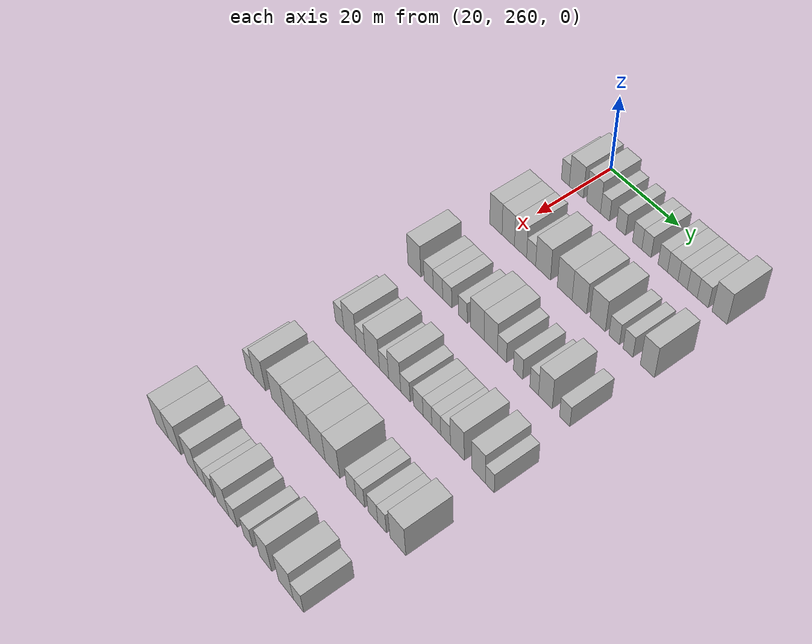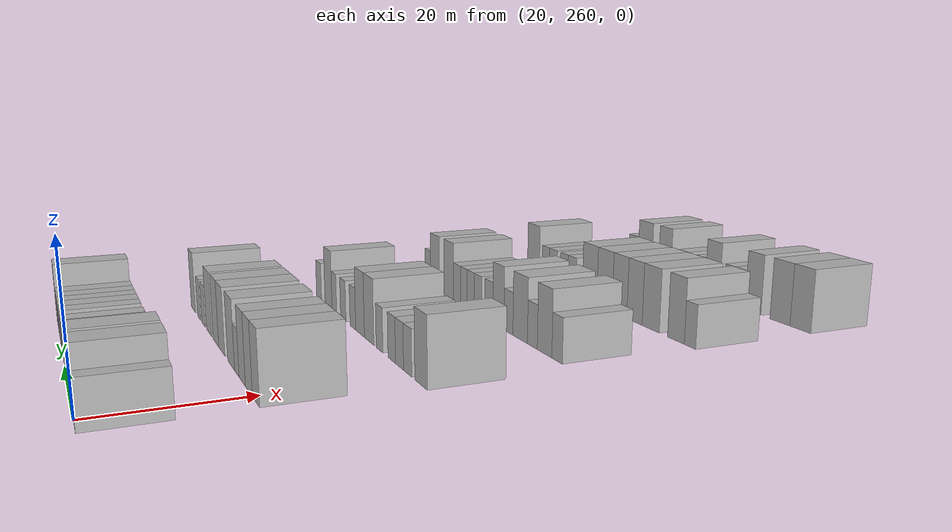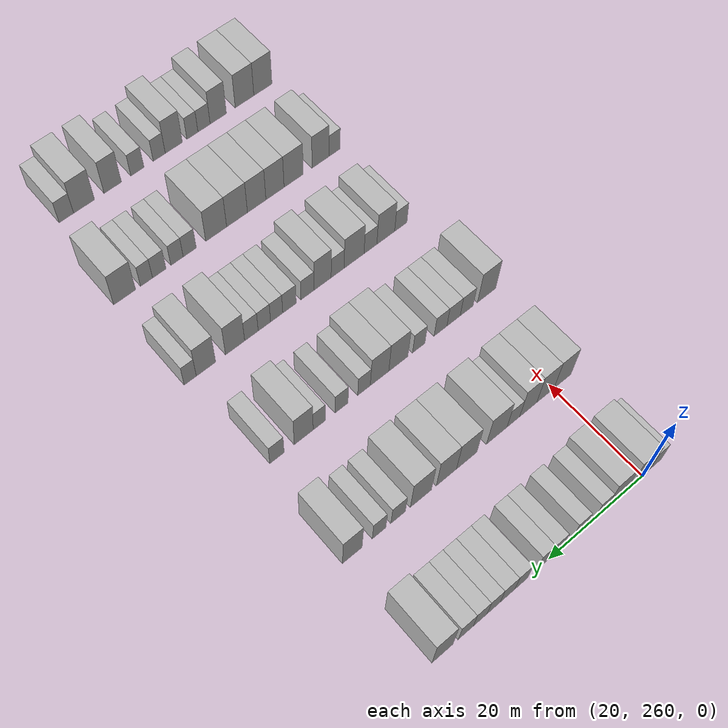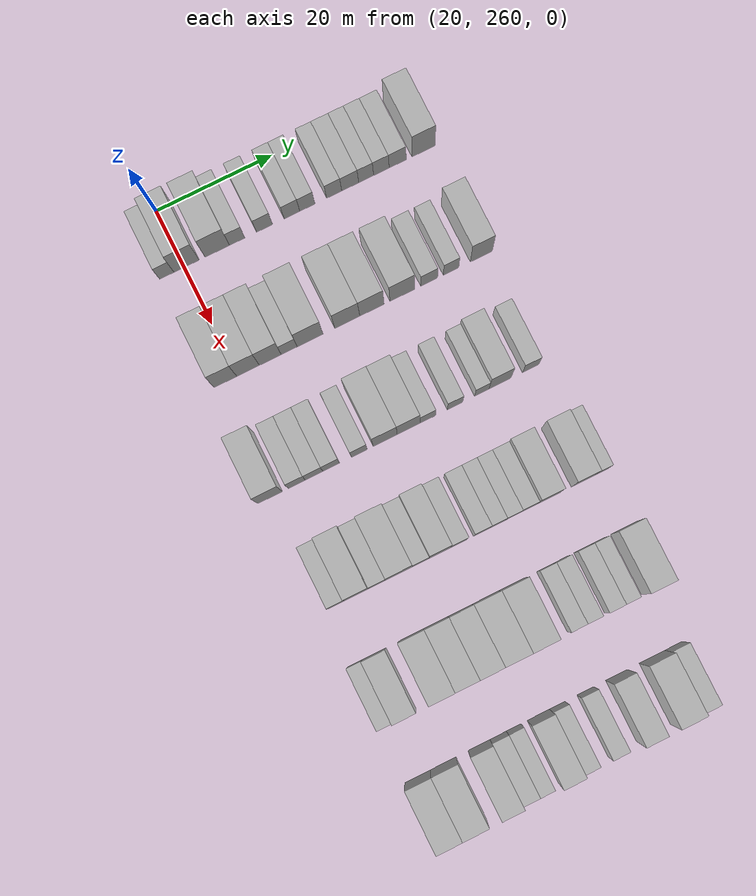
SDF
<sdf version="1.6">
 <world name="default">
  <model name="building_163">
   <static>1</static>
   <pose>25.0000 257.0607 0 0.000000 0.000000 0.000000</pose>
   <link name="link">
    <pose>0 0 3.00 0 0 0</pose>
    <collision name="collision"><geometry><box><size>10.0000 2.4464 6.0000</size></box></geometry></collision>
    <visual name="visual">
     <cast_shadows>0</cast_shadows>
     <geometry><box><size>10.0000 2.4464 6.0000</size></box></geometry>
     <material>
      <script>
       <uri>model://HANNAS_wall/materials/scripts</uri>
       <uri>model://HANNAS_wall/materials/textures</uri>
       <name>vrc/HANNAS_wall</name>
      </script>
     </material>
    </visual>
   </link>
  </model>
  <model name="building_164">
   <static>1</static>
   <pose>25.0000 260.4388 0 0.000000 0.000000 0.000000</pose>
   <link name="link">
    <pose>0 0 4.50 0 0 0</pose>
    <collision name="collision"><geometry><box><size>10.0000 4.3098 9.0000</size></box></geometry></collision>
    <visual name="visual">
     <cast_shadows>0</cast_shadows>
     <geometry><box><size>10.0000 4.3098 9.0000</size></box></geometry>
     <material>
      <script>
       <uri>model://HANNAS_wall/materials/scripts</uri>
       <uri>model://HANNAS_wall/materials/textures</uri>
       <name>vrc/HANNAS_wall</name>
      </script>
     </material>
    </visual>
   </link>
  </model>
  <model name="building_165">
   <static>1</static>
   <pose>25.0000 265.6917 0 0.000000 0.000000 0.000000</pose>
   <link name="link">
    <pose>0 0 4.50 0 0 0</pose>
    <collision name="collision"><geometry><box><size>10.0000 4.1960 9.0000</size></box></geometry></collision>
    <visual name="visual">
     <cast_shadows>0</cast_shadows>
     <geometry><box><size>10.0000 4.1960 9.0000</size></box></geometry>
     <material>
      <script>
       <uri>model://HANNAS_wall/materials/scripts</uri>
       <uri>model://HANNAS_wall/materials/textures</uri>
       <name>vrc/HANNAS_wall</name>
      </script>
     </material>
    </visual>
   </link>
  </model>
  <model name="building_166">
   <static>1</static>
   <pose>25.0000 269.1100 0 0.000000 0.000000 0.000000</pose>
   <link name="link">
    <pose>0 0 3.00 0 0 0</pose>
    <collision name="collision"><geometry><box><size>10.0000 2.6405 6.0000</size></box></geometry></collision>
    <visual name="visual">
     <cast_shadows>0</cast_shadows>
     <geometry><box><size>10.0000 2.6405 6.0000</size></box></geometry>
     <material>
      <script>
       <uri>model://HANNAS_wall/materials/scripts</uri>
       <uri>model://HANNAS_wall/materials/textures</uri>
       <name>vrc/HANNAS_wall</name>
      </script>
     </material>
    </visual>
   </link>
  </model>
  <model name="building_167">
   <static>1</static>
   <pose>25.0000 273.8088 0 0.000000 0.000000 0.000000</pose>
   <link name="link">
    <pose>0 0 3.00 0 0 0</pose>
    <collision name="collision"><geometry><box><size>10.0000 2.7572 6.0000</size></box></geometry></collision>
    <visual name="visual">
     <cast_shadows>0</cast_shadows>
     <geometry><box><size>10.0000 2.7572 6.0000</size></box></geometry>
     <material>
      <script>
       <uri>model://HANNAS_wall/materials/scripts</uri>
       <uri>model://HANNAS_wall/materials/textures</uri>
       <name>vrc/HANNAS_wall</name>
      </script>
     </material>
    </visual>
   </link>
  </model>
  <model name="building_168">
   <static>1</static>
   <pose>25.0000 278.5314 0 0.000000 0.000000 0.000000</pose>
   <link name="link">
    <pose>0 0 3.00 0 0 0</pose>
    <collision name="collision"><geometry><box><size>10.0000 2.6878 6.0000</size></box></geometry></collision>
    <visual name="visual">
     <cast_shadows>0</cast_shadows>
     <geometry><box><size>10.0000 2.6878 6.0000</size></box></geometry>
     <material>
      <script>
       <uri>model://HANNAS_wall/materials/scripts</uri>
       <uri>model://HANNAS_wall/materials/textures</uri>
       <name>vrc/HANNAS_wall</name>
      </script>
     </material>
    </visual>
   </link>
  </model>
  <model name="building_169">
   <static>1</static>
   <pose>25.0000 281.1894 0 0.000000 0.000000 0.000000</pose>
   <link name="link">
    <pose>0 0 3.00 0 0 0</pose>
    <collision name="collision"><geometry><box><size>10.0000 2.6283 6.0000</size></box></geometry></collision>
    <visual name="visual">
     <cast_shadows>0</cast_shadows>
     <geometry><box><size>10.0000 2.6283 6.0000</size></box></geometry>
     <material>
      <script>
       <uri>model://HANNAS_wall/materials/scripts</uri>
       <uri>model://HANNAS_wall/materials/textures</uri>
       <name>vrc/HANNAS_wall</name>
      </script>
     </material>
    </visual>
   </link>
  </model>
  <model name="building_170">
   <static>1</static>
   <pose>25.0000 285.8155 0 0.000000 0.000000 0.000000</pose>
   <link name="link">
    <pose>0 0 3.00 0 0 0</pose>
    <collision name="collision"><geometry><box><size>10.0000 2.6239 6.0000</size></box></geometry></collision>
    <visual name="visual">
     <cast_shadows>0</cast_shadows>
     <geometry><box><size>10.0000 2.6239 6.0000</size></box></geometry>
     <material>
      <script>
       <uri>model://HANNAS_wall/materials/scripts</uri>
       <uri>model://HANNAS_wall/materials/textures</uri>
       <name>vrc/HANNAS_wall</name>
      </script>
     </material>
    </visual>
   </link>
  </model>
  <model name="building_171">
   <static>1</static>
   <pose>25.0000 288.5907 0 0.000000 0.000000 0.000000</pose>
   <link name="link">
    <pose>0 0 3.00 0 0 0</pose>
    <collision name="collision"><geometry><box><size>10.0000 2.9265 6.0000</size></box></geometry></collision>
    <visual name="visual">
     <cast_shadows>0</cast_shadows>
     <geometry><box><size>10.0000 2.9265 6.0000</size></box></geometry>
     <material>
      <script>
       <uri>model://HANNAS_wall/materials/scripts</uri>
       <uri>model://HANNAS_wall/materials/textures</uri>
       <name>vrc/HANNAS_wall</name>
      </script>
     </material>
    </visual>
   </link>
  </model>
  <model name="building_172">
   <static>1</static>
   <pose>25.0000 291.3458 0 0.000000 0.000000 0.000000</pose>
   <link name="link">
    <pose>0 0 3.00 0 0 0</pose>
    <collision name="collision"><geometry><box><size>10.0000 2.5837 6.0000</size></box></geometry></collision>
    <visual name="visual">
     <cast_shadows>0</cast_shadows>
     <geometry><box><size>10.0000 2.5837 6.0000</size></box></geometry>
     <material>
      <script>
       <uri>model://HANNAS_wall/materials/scripts</uri>
       <uri>model://HANNAS_wall/materials/textures</uri>
       <name>vrc/HANNAS_wall</name>
      </script>
     </material>
    </visual>
   </link>
  </model>
  <model name="building_173">
   <static>1</static>
   <pose>25.0000 293.9903 0 0.000000 0.000000 0.000000</pose>
   <link name="link">
    <pose>0 0 3.00 0 0 0</pose>
    <collision name="collision"><geometry><box><size>10.0000 2.7052 6.0000</size></box></geometry></collision>
    <visual name="visual">
     <cast_shadows>0</cast_shadows>
     <geometry><box><size>10.0000 2.7052 6.0000</size></box></geometry>
     <material>
      <script>
       <uri>model://HANNAS_wall/materials/scripts</uri>
       <uri>model://HANNAS_wall/materials/textures</uri>
       <name>vrc/HANNAS_wall</name>
      </script>
     </material>
    </visual>
   </link>
  </model>
  <model name="building_174">
   <static>1</static>
   <pose>25.0000 296.8270 0 0.000000 0.000000 0.000000</pose>
   <link name="link">
    <pose>0 0 3.00 0 0 0</pose>
    <collision name="collision"><geometry><box><size>10.0000 2.9683 6.0000</size></box></geometry></collision>
    <visual name="visual">
     <cast_shadows>0</cast_shadows>
     <geometry><box><size>10.0000 2.9683 6.0000</size></box></geometry>
     <material>
      <script>
       <uri>model://HANNAS_wall/materials/scripts</uri>
       <uri>model://HANNAS_wall/materials/textures</uri>
       <name>vrc/HANNAS_wall</name>
      </script>
     </material>
    </visual>
   </link>
  </model>
  <model name="building_175">
   <static>1</static>
   <pose>25.0000 301.3216 0 0.000000 0.000000 0.000000</pose>
   <link name="link">
    <pose>0 0 4.50 0 0 0</pose>
    <collision name="collision"><geometry><box><size>10.0000 4.0209 9.0000</size></box></geometry></collision>
    <visual name="visual">
     <cast_shadows>0</cast_shadows>
     <geometry><box><size>10.0000 4.0209 9.0000</size></box></geometry>
     <material>
      <script>
       <uri>model://HANNAS_wall/materials/scripts</uri>
       <uri>model://HANNAS_wall/materials/textures</uri>
       <name>vrc/HANNAS_wall</name>
      </script>
     </material>
    </visual>
   </link>
  </model>
  <model name="building_335">
   <static>1</static>
   <pose>44.0000 257.9819 0 0.000000 0.000000 0.000000</pose>
   <link name="link">
    <pose>0 0 4.50 0 0 0</pose>
    <collision name="collision"><geometry><box><size>10.0000 3.8244 9.0000</size></box></geometry></collision>
    <visual name="visual">
     <cast_shadows>0</cast_shadows>
     <geometry><box><size>10.0000 3.8244 9.0000</size></box></geometry>
     <material>
      <script>
       <uri>model://HANNAS_wall/materials/scripts</uri>
       <uri>model://HANNAS_wall/materials/textures</uri>
       <name>vrc/HANNAS_wall</name>
      </script>
     </material>
    </visual>
   </link>
  </model>
  <model name="building_336">
   <static>1</static>
   <pose>44.0000 261.8067 0 0.000000 0.000000 0.000000</pose>
   <link name="link">
    <pose>0 0 4.50 0 0 0</pose>
    <collision name="collision"><geometry><box><size>10.0000 3.8253 9.0000</size></box></geometry></collision>
    <visual name="visual">
     <cast_shadows>0</cast_shadows>
     <geometry><box><size>10.0000 3.8253 9.0000</size></box></geometry>
     <material>
      <script>
       <uri>model://HANNAS_wall/materials/scripts</uri>
       <uri>model://HANNAS_wall/materials/textures</uri>
       <name>vrc/HANNAS_wall</name>
      </script>
     </material>
    </visual>
   </link>
  </model>
  <model name="building_337">
   <static>1</static>
   <pose>44.0000 265.5849 0 0.000000 0.000000 0.000000</pose>
   <link name="link">
    <pose>0 0 4.50 0 0 0</pose>
    <collision name="collision"><geometry><box><size>10.0000 3.7310 9.0000</size></box></geometry></collision>
    <visual name="visual">
     <cast_shadows>0</cast_shadows>
     <geometry><box><size>10.0000 3.7310 9.0000</size></box></geometry>
     <material>
      <script>
       <uri>model://HANNAS_wall/materials/scripts</uri>
       <uri>model://HANNAS_wall/materials/textures</uri>
       <name>vrc/HANNAS_wall</name>
      </script>
     </material>
    </visual>
   </link>
  </model>
  <model name="building_338">
   <static>1</static>
   <pose>44.0000 268.8126 0 0.000000 0.000000 0.000000</pose>
   <link name="link">
    <pose>0 0 3.00 0 0 0</pose>
    <collision name="collision"><geometry><box><size>10.0000 2.7243 6.0000</size></box></geometry></collision>
    <visual name="visual">
     <cast_shadows>0</cast_shadows>
     <geometry><box><size>10.0000 2.7243 6.0000</size></box></geometry>
     <material>
      <script>
       <uri>model://HANNAS_wall/materials/scripts</uri>
       <uri>model://HANNAS_wall/materials/textures</uri>
       <name>vrc/HANNAS_wall</name>
      </script>
     </material>
    </visual>
   </link>
  </model>
  <model name="building_339">
   <static>1</static>
   <pose>44.0000 272.3797 0 0.000000 0.000000 0.000000</pose>
   <link name="link">
    <pose>0 0 4.50 0 0 0</pose>
    <collision name="collision"><geometry><box><size>10.0000 4.4100 9.0000</size></box></geometry></collision>
    <visual name="visual">
     <cast_shadows>0</cast_shadows>
     <geometry><box><size>10.0000 4.4100 9.0000</size></box></geometry>
     <material>
      <script>
       <uri>model://HANNAS_wall/materials/scripts</uri>
       <uri>model://HANNAS_wall/materials/textures</uri>
       <name>vrc/HANNAS_wall</name>
      </script>
     </material>
    </visual>
   </link>
  </model>
  <model name="building_340">
   <static>1</static>
   <pose>44.0000 278.7331 0 0.000000 0.000000 0.000000</pose>
   <link name="link">
    <pose>0 0 4.50 0 0 0</pose>
    <collision name="collision"><geometry><box><size>10.0000 4.2968 9.0000</size></box></geometry></collision>
    <visual name="visual">
     <cast_shadows>0</cast_shadows>
     <geometry><box><size>10.0000 4.2968 9.0000</size></box></geometry>
     <material>
      <script>
       <uri>model://HANNAS_wall/materials/scripts</uri>
       <uri>model://HANNAS_wall/materials/textures</uri>
       <name>vrc/HANNAS_wall</name>
      </script>
     </material>
    </visual>
   </link>
  </model>
  <model name="building_341">
   <static>1</static>
   <pose>44.0000 282.9627 0 0.000000 0.000000 0.000000</pose>
   <link name="link">
    <pose>0 0 4.50 0 0 0</pose>
    <collision name="collision"><geometry><box><size>10.0000 4.1624 9.0000</size></box></geometry></collision>
    <visual name="visual">
     <cast_shadows>0</cast_shadows>
     <geometry><box><size>10.0000 4.1624 9.0000</size></box></geometry>
     <material>
      <script>
       <uri>model://HANNAS_wall/materials/scripts</uri>
       <uri>model://HANNAS_wall/materials/textures</uri>
       <name>vrc/HANNAS_wall</name>
      </script>
     </material>
    </visual>
   </link>
  </model>
  <model name="building_342">
   <static>1</static>
   <pose>44.0000 288.1885 0 0.000000 0.000000 0.000000</pose>
   <link name="link">
    <pose>0 0 4.50 0 0 0</pose>
    <collision name="collision"><geometry><box><size>10.0000 4.2892 9.0000</size></box></geometry></collision>
    <visual name="visual">
     <cast_shadows>0</cast_shadows>
     <geometry><box><size>10.0000 4.2892 9.0000</size></box></geometry>
     <material>
      <script>
       <uri>model://HANNAS_wall/materials/scripts</uri>
       <uri>model://HANNAS_wall/materials/textures</uri>
       <name>vrc/HANNAS_wall</name>
      </script>
     </material>
    </visual>
   </link>
  </model>
  <model name="building_343">
   <static>1</static>
   <pose>44.0000 292.7827 0 0.000000 0.000000 0.000000</pose>
   <link name="link">
    <pose>0 0 3.00 0 0 0</pose>
    <collision name="collision"><geometry><box><size>10.0000 2.8993 6.0000</size></box></geometry></collision>
    <visual name="visual">
     <cast_shadows>0</cast_shadows>
     <geometry><box><size>10.0000 2.8993 6.0000</size></box></geometry>
     <material>
      <script>
       <uri>model://HANNAS_wall/materials/scripts</uri>
       <uri>model://HANNAS_wall/materials/textures</uri>
       <name>vrc/HANNAS_wall</name>
      </script>
     </material>
    </visual>
   </link>
  </model>
  <model name="building_344">
   <static>1</static>
   <pose>44.0000 296.5661 0 0.000000 0.000000 0.000000</pose>
   <link name="link">
    <pose>0 0 3.00 0 0 0</pose>
    <collision name="collision"><geometry><box><size>10.0000 2.6674 6.0000</size></box></geometry></collision>
    <visual name="visual">
     <cast_shadows>0</cast_shadows>
     <geometry><box><size>10.0000 2.6674 6.0000</size></box></geometry>
     <material>
      <script>
       <uri>model://HANNAS_wall/materials/scripts</uri>
       <uri>model://HANNAS_wall/materials/textures</uri>
       <name>vrc/HANNAS_wall</name>
      </script>
     </material>
    </visual>
   </link>
  </model>
  <model name="building_345">
   <static>1</static>
   <pose>44.0000 301.8035 0 0.000000 0.000000 0.000000</pose>
   <link name="link">
    <pose>0 0 4.50 0 0 0</pose>
    <collision name="collision"><geometry><box><size>10.0000 3.8074 9.0000</size></box></geometry></collision>
    <visual name="visual">
     <cast_shadows>0</cast_shadows>
     <geometry><box><size>10.0000 3.8074 9.0000</size></box></geometry>
     <material>
      <script>
       <uri>model://HANNAS_wall/materials/scripts</uri>
       <uri>model://HANNAS_wall/materials/textures</uri>
       <name>vrc/HANNAS_wall</name>
      </script>
     </material>
    </visual>
   </link>
  </model>
  <model name="building_499">
   <static>1</static>
   <pose>63.0000 256.3614 0 0.000000 0.000000 0.000000</pose>
   <link name="link">
    <pose>0 0 4.50 0 0 0</pose>
    <collision name="collision"><geometry><box><size>10.0000 4.1214 9.0000</size></box></geometry></collision>
    <visual name="visual">
     <cast_shadows>0</cast_shadows>
     <geometry><box><size>10.0000 4.1214 9.0000</size></box></geometry>
     <material>
      <script>
       <uri>model://HANNAS_wall/materials/scripts</uri>
       <uri>model://HANNAS_wall/materials/textures</uri>
       <name>vrc/HANNAS_wall</name>
      </script>
     </material>
    </visual>
   </link>
  </model>
  <model name="building_500">
   <static>1</static>
   <pose>63.0000 260.8681 0 0.000000 0.000000 0.000000</pose>
   <link name="link">
    <pose>0 0 3.00 0 0 0</pose>
    <collision name="collision"><geometry><box><size>10.0000 2.8920 6.0000</size></box></geometry></collision>
    <visual name="visual">
     <cast_shadows>0</cast_shadows>
     <geometry><box><size>10.0000 2.8920 6.0000</size></box></geometry>
     <material>
      <script>
       <uri>model://HANNAS_wall/materials/scripts</uri>
       <uri>model://HANNAS_wall/materials/textures</uri>
       <name>vrc/HANNAS_wall</name>
      </script>
     </material>
    </visual>
   </link>
  </model>
  <model name="building_501">
   <static>1</static>
   <pose>63.0000 263.7883 0 0.000000 0.000000 0.000000</pose>
   <link name="link">
    <pose>0 0 3.00 0 0 0</pose>
    <collision name="collision"><geometry><box><size>10.0000 2.9484 6.0000</size></box></geometry></collision>
    <visual name="visual">
     <cast_shadows>0</cast_shadows>
     <geometry><box><size>10.0000 2.9484 6.0000</size></box></geometry>
     <material>
      <script>
       <uri>model://HANNAS_wall/materials/scripts</uri>
       <uri>model://HANNAS_wall/materials/textures</uri>
       <name>vrc/HANNAS_wall</name>
      </script>
     </material>
    </visual>
   </link>
  </model>
  <model name="building_502">
   <static>1</static>
   <pose>63.0000 266.6634 0 0.000000 0.000000 0.000000</pose>
   <link name="link">
    <pose>0 0 3.00 0 0 0</pose>
    <collision name="collision"><geometry><box><size>10.0000 2.8018 6.0000</size></box></geometry></collision>
    <visual name="visual">
     <cast_shadows>0</cast_shadows>
     <geometry><box><size>10.0000 2.8018 6.0000</size></box></geometry>
     <material>
      <script>
       <uri>model://HANNAS_wall/materials/scripts</uri>
       <uri>model://HANNAS_wall/materials/textures</uri>
       <name>vrc/HANNAS_wall</name>
      </script>
     </material>
    </visual>
   </link>
  </model>
  <model name="building_503">
   <static>1</static>
   <pose>63.0000 271.4098 0 0.000000 0.000000 0.000000</pose>
   <link name="link">
    <pose>0 0 3.00 0 0 0</pose>
    <collision name="collision"><geometry><box><size>10.0000 2.6911 6.0000</size></box></geometry></collision>
    <visual name="visual">
     <cast_shadows>0</cast_shadows>
     <geometry><box><size>10.0000 2.6911 6.0000</size></box></geometry>
     <material>
      <script>
       <uri>model://HANNAS_wall/materials/scripts</uri>
       <uri>model://HANNAS_wall/materials/textures</uri>
       <name>vrc/HANNAS_wall</name>
      </script>
     </material>
    </visual>
   </link>
  </model>
  <model name="building_504">
   <static>1</static>
   <pose>63.0000 275.7865 0 0.000000 0.000000 0.000000</pose>
   <link name="link">
    <pose>0 0 4.50 0 0 0</pose>
    <collision name="collision"><geometry><box><size>10.0000 4.0624 9.0000</size></box></geometry></collision>
    <visual name="visual">
     <cast_shadows>0</cast_shadows>
     <geometry><box><size>10.0000 4.0624 9.0000</size></box></geometry>
     <material>
      <script>
       <uri>model://HANNAS_wall/materials/scripts</uri>
       <uri>model://HANNAS_wall/materials/textures</uri>
       <name>vrc/HANNAS_wall</name>
      </script>
     </material>
    </visual>
   </link>
  </model>
  <model name="building_505">
   <static>1</static>
   <pose>63.0000 279.7699 0 0.000000 0.000000 0.000000</pose>
   <link name="link">
    <pose>0 0 4.50 0 0 0</pose>
    <collision name="collision"><geometry><box><size>10.0000 3.9043 9.0000</size></box></geometry></collision>
    <visual name="visual">
     <cast_shadows>0</cast_shadows>
     <geometry><box><size>10.0000 3.9043 9.0000</size></box></geometry>
     <material>
      <script>
       <uri>model://HANNAS_wall/materials/scripts</uri>
       <uri>model://HANNAS_wall/materials/textures</uri>
       <name>vrc/HANNAS_wall</name>
      </script>
     </material>
    </visual>
   </link>
  </model>
  <model name="building_506">
   <static>1</static>
   <pose>63.0000 283.0346 0 0.000000 0.000000 0.000000</pose>
   <link name="link">
    <pose>0 0 3.00 0 0 0</pose>
    <collision name="collision"><geometry><box><size>10.0000 2.6252 6.0000</size></box></geometry></collision>
    <visual name="visual">
     <cast_shadows>0</cast_shadows>
     <geometry><box><size>10.0000 2.6252 6.0000</size></box></geometry>
     <material>
      <script>
       <uri>model://HANNAS_wall/materials/scripts</uri>
       <uri>model://HANNAS_wall/materials/textures</uri>
       <name>vrc/HANNAS_wall</name>
      </script>
     </material>
    </visual>
   </link>
  </model>
  <model name="building_507">
   <static>1</static>
   <pose>63.0000 287.6786 0 0.000000 0.000000 0.000000</pose>
   <link name="link">
    <pose>0 0 3.00 0 0 0</pose>
    <collision name="collision"><geometry><box><size>10.0000 2.6628 6.0000</size></box></geometry></collision>
    <visual name="visual">
     <cast_shadows>0</cast_shadows>
     <geometry><box><size>10.0000 2.6628 6.0000</size></box></geometry>
     <material>
      <script>
       <uri>model://HANNAS_wall/materials/scripts</uri>
       <uri>model://HANNAS_wall/materials/textures</uri>
       <name>vrc/HANNAS_wall</name>
      </script>
     </material>
    </visual>
   </link>
  </model>
  <model name="building_508">
   <static>1</static>
   <pose>63.0000 292.2368 0 0.000000 0.000000 0.000000</pose>
   <link name="link">
    <pose>0 0 3.00 0 0 0</pose>
    <collision name="collision"><geometry><box><size>10.0000 2.4536 6.0000</size></box></geometry></collision>
    <visual name="visual">
     <cast_shadows>0</cast_shadows>
     <geometry><box><size>10.0000 2.4536 6.0000</size></box></geometry>
     <material>
      <script>
       <uri>model://HANNAS_wall/materials/scripts</uri>
       <uri>model://HANNAS_wall/materials/textures</uri>
       <name>vrc/HANNAS_wall</name>
      </script>
     </material>
    </visual>
   </link>
  </model>
  <model name="building_509">
   <static>1</static>
   <pose>63.0000 295.3501 0 0.000000 0.000000 0.000000</pose>
   <link name="link">
    <pose>0 0 4.50 0 0 0</pose>
    <collision name="collision"><geometry><box><size>10.0000 3.7730 9.0000</size></box></geometry></collision>
    <visual name="visual">
     <cast_shadows>0</cast_shadows>
     <geometry><box><size>10.0000 3.7730 9.0000</size></box></geometry>
     <material>
      <script>
       <uri>model://HANNAS_wall/materials/scripts</uri>
       <uri>model://HANNAS_wall/materials/textures</uri>
       <name>vrc/HANNAS_wall</name>
      </script>
     </material>
    </visual>
   </link>
  </model>
  <model name="building_510">
   <static>1</static>
   <pose>63.0000 300.6504 0 0.000000 0.000000 0.000000</pose>
   <link name="link">
    <pose>0 0 3.00 0 0 0</pose>
    <collision name="collision"><geometry><box><size>10.0000 2.8277 6.0000</size></box></geometry></collision>
    <visual name="visual">
     <cast_shadows>0</cast_shadows>
     <geometry><box><size>10.0000 2.8277 6.0000</size></box></geometry>
     <material>
      <script>
       <uri>model://HANNAS_wall/materials/scripts</uri>
       <uri>model://HANNAS_wall/materials/textures</uri>
       <name>vrc/HANNAS_wall</name>
      </script>
     </material>
    </visual>
   </link>
  </model>
  <model name="building_667">
   <static>1</static>
   <pose>82.0000 258.2792 0 0.000000 0.000000 0.000000</pose>
   <link name="link">
    <pose>0 0 3.00 0 0 0</pose>
    <collision name="collision"><geometry><box><size>10.0000 2.7778 6.0000</size></box></geometry></collision>
    <visual name="visual">
     <cast_shadows>0</cast_shadows>
     <geometry><box><size>10.0000 2.7778 6.0000</size></box></geometry>
     <material>
      <script>
       <uri>model://HANNAS_wall/materials/scripts</uri>
       <uri>model://HANNAS_wall/materials/textures</uri>
       <name>vrc/HANNAS_wall</name>
      </script>
     </material>
    </visual>
   </link>
  </model>
  <model name="building_668">
   <static>1</static>
   <pose>82.0000 261.6729 0 0.000000 0.000000 0.000000</pose>
   <link name="link">
    <pose>0 0 4.50 0 0 0</pose>
    <collision name="collision"><geometry><box><size>10.0000 4.0095 9.0000</size></box></geometry></collision>
    <visual name="visual">
     <cast_shadows>0</cast_shadows>
     <geometry><box><size>10.0000 4.0095 9.0000</size></box></geometry>
     <material>
      <script>
       <uri>model://HANNAS_wall/materials/scripts</uri>
       <uri>model://HANNAS_wall/materials/textures</uri>
       <name>vrc/HANNAS_wall</name>
      </script>
     </material>
    </visual>
   </link>
  </model>
  <model name="building_669">
   <static>1</static>
   <pose>82.0000 265.1018 0 0.000000 0.000000 0.000000</pose>
   <link name="link">
    <pose>0 0 3.00 0 0 0</pose>
    <collision name="collision"><geometry><box><size>10.0000 2.8484 6.0000</size></box></geometry></collision>
    <visual name="visual">
     <cast_shadows>0</cast_shadows>
     <geometry><box><size>10.0000 2.8484 6.0000</size></box></geometry>
     <material>
      <script>
       <uri>model://HANNAS_wall/materials/scripts</uri>
       <uri>model://HANNAS_wall/materials/textures</uri>
       <name>vrc/HANNAS_wall</name>
      </script>
     </material>
    </visual>
   </link>
  </model>
  <model name="building_670">
   <static>1</static>
   <pose>82.0000 268.7265 0 0.000000 0.000000 0.000000</pose>
   <link name="link">
    <pose>0 0 4.50 0 0 0</pose>
    <collision name="collision"><geometry><box><size>10.0000 4.4009 9.0000</size></box></geometry></collision>
    <visual name="visual">
     <cast_shadows>0</cast_shadows>
     <geometry><box><size>10.0000 4.4009 9.0000</size></box></geometry>
     <material>
      <script>
       <uri>model://HANNAS_wall/materials/scripts</uri>
       <uri>model://HANNAS_wall/materials/textures</uri>
       <name>vrc/HANNAS_wall</name>
      </script>
     </material>
    </visual>
   </link>
  </model>
  <model name="building_671">
   <static>1</static>
   <pose>82.0000 272.3309 0 0.000000 0.000000 0.000000</pose>
   <link name="link">
    <pose>0 0 3.00 0 0 0</pose>
    <collision name="collision"><geometry><box><size>10.0000 2.8080 6.0000</size></box></geometry></collision>
    <visual name="visual">
     <cast_shadows>0</cast_shadows>
     <geometry><box><size>10.0000 2.8080 6.0000</size></box></geometry>
     <material>
      <script>
       <uri>model://HANNAS_wall/materials/scripts</uri>
       <uri>model://HANNAS_wall/materials/textures</uri>
       <name>vrc/HANNAS_wall</name>
      </script>
     </material>
    </visual>
   </link>
  </model>
  <model name="building_672">
   <static>1</static>
   <pose>82.0000 275.5765 0 0.000000 0.000000 0.000000</pose>
   <link name="link">
    <pose>0 0 4.50 0 0 0</pose>
    <collision name="collision"><geometry><box><size>10.0000 3.6832 9.0000</size></box></geometry></collision>
    <visual name="visual">
     <cast_shadows>0</cast_shadows>
     <geometry><box><size>10.0000 3.6832 9.0000</size></box></geometry>
     <material>
      <script>
       <uri>model://HANNAS_wall/materials/scripts</uri>
       <uri>model://HANNAS_wall/materials/textures</uri>
       <name>vrc/HANNAS_wall</name>
      </script>
     </material>
    </visual>
   </link>
  </model>
  <model name="building_673">
   <static>1</static>
   <pose>82.0000 278.8237 0 0.000000 0.000000 0.000000</pose>
   <link name="link">
    <pose>0 0 3.00 0 0 0</pose>
    <collision name="collision"><geometry><box><size>10.0000 2.8114 6.0000</size></box></geometry></collision>
    <visual name="visual">
     <cast_shadows>0</cast_shadows>
     <geometry><box><size>10.0000 2.8114 6.0000</size></box></geometry>
     <material>
      <script>
       <uri>model://HANNAS_wall/materials/scripts</uri>
       <uri>model://HANNAS_wall/materials/textures</uri>
       <name>vrc/HANNAS_wall</name>
      </script>
     </material>
    </visual>
   </link>
  </model>
  <model name="building_674">
   <static>1</static>
   <pose>82.0000 282.6466 0 0.000000 0.000000 0.000000</pose>
   <link name="link">
    <pose>0 0 3.00 0 0 0</pose>
    <collision name="collision"><geometry><box><size>10.0000 2.8342 6.0000</size></box></geometry></collision>
    <visual name="visual">
     <cast_shadows>0</cast_shadows>
     <geometry><box><size>10.0000 2.8342 6.0000</size></box></geometry>
     <material>
      <script>
       <uri>model://HANNAS_wall/materials/scripts</uri>
       <uri>model://HANNAS_wall/materials/textures</uri>
       <name>vrc/HANNAS_wall</name>
      </script>
     </material>
    </visual>
   </link>
  </model>
  <model name="building_675">
   <static>1</static>
   <pose>82.0000 285.3349 0 0.000000 0.000000 0.000000</pose>
   <link name="link">
    <pose>0 0 3.00 0 0 0</pose>
    <collision name="collision"><geometry><box><size>10.0000 2.5424 6.0000</size></box></geometry></collision>
    <visual name="visual">
     <cast_shadows>0</cast_shadows>
     <geometry><box><size>10.0000 2.5424 6.0000</size></box></geometry>
     <material>
      <script>
       <uri>model://HANNAS_wall/materials/scripts</uri>
       <uri>model://HANNAS_wall/materials/textures</uri>
       <name>vrc/HANNAS_wall</name>
      </script>
     </material>
    </visual>
   </link>
  </model>
  <model name="building_676">
   <static>1</static>
   <pose>82.0000 287.8908 0 0.000000 0.000000 0.000000</pose>
   <link name="link">
    <pose>0 0 3.00 0 0 0</pose>
    <collision name="collision"><geometry><box><size>10.0000 2.5695 6.0000</size></box></geometry></collision>
    <visual name="visual">
     <cast_shadows>0</cast_shadows>
     <geometry><box><size>10.0000 2.5695 6.0000</size></box></geometry>
     <material>
      <script>
       <uri>model://HANNAS_wall/materials/scripts</uri>
       <uri>model://HANNAS_wall/materials/textures</uri>
       <name>vrc/HANNAS_wall</name>
      </script>
     </material>
    </visual>
   </link>
  </model>
  <model name="building_677">
   <static>1</static>
   <pose>82.0000 290.5704 0 0.000000 0.000000 0.000000</pose>
   <link name="link">
    <pose>0 0 3.00 0 0 0</pose>
    <collision name="collision"><geometry><box><size>10.0000 2.7896 6.0000</size></box></geometry></collision>
    <visual name="visual">
     <cast_shadows>0</cast_shadows>
     <geometry><box><size>10.0000 2.7896 6.0000</size></box></geometry>
     <material>
      <script>
       <uri>model://HANNAS_wall/materials/scripts</uri>
       <uri>model://HANNAS_wall/materials/textures</uri>
       <name>vrc/HANNAS_wall</name>
      </script>
     </material>
    </visual>
   </link>
  </model>
  <model name="building_678">
   <static>1</static>
   <pose>82.0000 293.9094 0 0.000000 0.000000 0.000000</pose>
   <link name="link">
    <pose>0 0 4.50 0 0 0</pose>
    <collision name="collision"><geometry><box><size>10.0000 3.8883 9.0000</size></box></geometry></collision>
    <visual name="visual">
     <cast_shadows>0</cast_shadows>
     <geometry><box><size>10.0000 3.8883 9.0000</size></box></geometry>
     <material>
      <script>
       <uri>model://HANNAS_wall/materials/scripts</uri>
       <uri>model://HANNAS_wall/materials/textures</uri>
       <name>vrc/HANNAS_wall</name>
      </script>
     </material>
    </visual>
   </link>
  </model>
  <model name="building_679">
   <static>1</static>
   <pose>82.0000 299.7846 0 0.000000 0.000000 0.000000</pose>
   <link name="link">
    <pose>0 0 4.50 0 0 0</pose>
    <collision name="collision"><geometry><box><size>10.0000 3.8621 9.0000</size></box></geometry></collision>
    <visual name="visual">
     <cast_shadows>0</cast_shadows>
     <geometry><box><size>10.0000 3.8621 9.0000</size></box></geometry>
     <material>
      <script>
       <uri>model://HANNAS_wall/materials/scripts</uri>
       <uri>model://HANNAS_wall/materials/textures</uri>
       <name>vrc/HANNAS_wall</name>
      </script>
     </material>
    </visual>
   </link>
  </model>
  <model name="building_680">
   <static>1</static>
   <pose>82.0000 302.9220 0 0.000000 0.000000 0.000000</pose>
   <link name="link">
    <pose>0 0 3.00 0 0 0</pose>
    <collision name="collision"><geometry><box><size>10.0000 2.4128 6.0000</size></box></geometry></collision>
    <visual name="visual">
     <cast_shadows>0</cast_shadows>
     <geometry><box><size>10.0000 2.4128 6.0000</size></box></geometry>
     <material>
      <script>
       <uri>model://HANNAS_wall/materials/scripts</uri>
       <uri>model://HANNAS_wall/materials/textures</uri>
       <name>vrc/HANNAS_wall</name>
      </script>
     </material>
    </visual>
   </link>
  </model>
  <model name="building_835">
   <static>1</static>
   <pose>101.0000 256.9071 0 0.000000 0.000000 0.000000</pose>
   <link name="link">
    <pose>0 0 3.00 0 0 0</pose>
    <collision name="collision"><geometry><box><size>10.0000 2.5381 6.0000</size></box></geometry></collision>
    <visual name="visual">
     <cast_shadows>0</cast_shadows>
     <geometry><box><size>10.0000 2.5381 6.0000</size></box></geometry>
     <material>
      <script>
       <uri>model://HANNAS_wall/materials/scripts</uri>
       <uri>model://HANNAS_wall/materials/textures</uri>
       <name>vrc/HANNAS_wall</name>
      </script>
     </material>
    </visual>
   </link>
  </model>
  <model name="building_836">
   <static>1</static>
   <pose>101.0000 260.1014 0 0.000000 0.000000 0.000000</pose>
   <link name="link">
    <pose>0 0 4.50 0 0 0</pose>
    <collision name="collision"><geometry><box><size>10.0000 3.8504 9.0000</size></box></geometry></collision>
    <visual name="visual">
     <cast_shadows>0</cast_shadows>
     <geometry><box><size>10.0000 3.8504 9.0000</size></box></geometry>
     <material>
      <script>
       <uri>model://HANNAS_wall/materials/scripts</uri>
       <uri>model://HANNAS_wall/materials/textures</uri>
       <name>vrc/HANNAS_wall</name>
      </script>
     </material>
    </visual>
   </link>
  </model>
  <model name="building_837">
   <static>1</static>
   <pose>101.0000 266.1714 0 0.000000 0.000000 0.000000</pose>
   <link name="link">
    <pose>0 0 4.50 0 0 0</pose>
    <collision name="collision"><geometry><box><size>10.0000 4.2897 9.0000</size></box></geometry></collision>
    <visual name="visual">
     <cast_shadows>0</cast_shadows>
     <geometry><box><size>10.0000 4.2897 9.0000</size></box></geometry>
     <material>
      <script>
       <uri>model://HANNAS_wall/materials/scripts</uri>
       <uri>model://HANNAS_wall/materials/textures</uri>
       <name>vrc/HANNAS_wall</name>
      </script>
     </material>
    </visual>
   </link>
  </model>
  <model name="building_838">
   <static>1</static>
   <pose>101.0000 270.3228 0 0.000000 0.000000 0.000000</pose>
   <link name="link">
    <pose>0 0 4.50 0 0 0</pose>
    <collision name="collision"><geometry><box><size>10.0000 4.0130 9.0000</size></box></geometry></collision>
    <visual name="visual">
     <cast_shadows>0</cast_shadows>
     <geometry><box><size>10.0000 4.0130 9.0000</size></box></geometry>
     <material>
      <script>
       <uri>model://HANNAS_wall/materials/scripts</uri>
       <uri>model://HANNAS_wall/materials/textures</uri>
       <name>vrc/HANNAS_wall</name>
      </script>
     </material>
    </visual>
   </link>
  </model>
  <model name="building_839">
   <static>1</static>
   <pose>101.0000 274.3491 0 0.000000 0.000000 0.000000</pose>
   <link name="link">
    <pose>0 0 4.50 0 0 0</pose>
    <collision name="collision"><geometry><box><size>10.0000 4.0396 9.0000</size></box></geometry></collision>
    <visual name="visual">
     <cast_shadows>0</cast_shadows>
     <geometry><box><size>10.0000 4.0396 9.0000</size></box></geometry>
     <material>
      <script>
       <uri>model://HANNAS_wall/materials/scripts</uri>
       <uri>model://HANNAS_wall/materials/textures</uri>
       <name>vrc/HANNAS_wall</name>
      </script>
     </material>
    </visual>
   </link>
  </model>
  <model name="building_840">
   <static>1</static>
   <pose>101.0000 278.6147 0 0.000000 0.000000 0.000000</pose>
   <link name="link">
    <pose>0 0 4.50 0 0 0</pose>
    <collision name="collision"><geometry><box><size>10.0000 4.4916 9.0000</size></box></geometry></collision>
    <visual name="visual">
     <cast_shadows>0</cast_shadows>
     <geometry><box><size>10.0000 4.4916 9.0000</size></box></geometry>
     <material>
      <script>
       <uri>model://HANNAS_wall/materials/scripts</uri>
       <uri>model://HANNAS_wall/materials/textures</uri>
       <name>vrc/HANNAS_wall</name>
      </script>
     </material>
    </visual>
   </link>
  </model>
  <model name="building_841">
   <static>1</static>
   <pose>101.0000 283.0916 0 0.000000 0.000000 0.000000</pose>
   <link name="link">
    <pose>0 0 4.50 0 0 0</pose>
    <collision name="collision"><geometry><box><size>10.0000 4.4621 9.0000</size></box></geometry></collision>
    <visual name="visual">
     <cast_shadows>0</cast_shadows>
     <geometry><box><size>10.0000 4.4621 9.0000</size></box></geometry>
     <material>
      <script>
       <uri>model://HANNAS_wall/materials/scripts</uri>
       <uri>model://HANNAS_wall/materials/textures</uri>
       <name>vrc/HANNAS_wall</name>
      </script>
     </material>
    </visual>
   </link>
  </model>
  <model name="building_842">
   <static>1</static>
   <pose>101.0000 288.6888 0 0.000000 0.000000 0.000000</pose>
   <link name="link">
    <pose>0 0 3.00 0 0 0</pose>
    <collision name="collision"><geometry><box><size>10.0000 2.7323 6.0000</size></box></geometry></collision>
    <visual name="visual">
     <cast_shadows>0</cast_shadows>
     <geometry><box><size>10.0000 2.7323 6.0000</size></box></geometry>
     <material>
      <script>
       <uri>model://HANNAS_wall/materials/scripts</uri>
       <uri>model://HANNAS_wall/materials/textures</uri>
       <name>vrc/HANNAS_wall</name>
      </script>
     </material>
    </visual>
   </link>
  </model>
  <model name="building_843">
   <static>1</static>
   <pose>101.0000 291.3404 0 0.000000 0.000000 0.000000</pose>
   <link name="link">
    <pose>0 0 3.00 0 0 0</pose>
    <collision name="collision"><geometry><box><size>10.0000 2.5710 6.0000</size></box></geometry></collision>
    <visual name="visual">
     <cast_shadows>0</cast_shadows>
     <geometry><box><size>10.0000 2.5710 6.0000</size></box></geometry>
     <material>
      <script>
       <uri>model://HANNAS_wall/materials/scripts</uri>
       <uri>model://HANNAS_wall/materials/textures</uri>
       <name>vrc/HANNAS_wall</name>
      </script>
     </material>
    </visual>
   </link>
  </model>
  <model name="building_844">
   <static>1</static>
   <pose>101.0000 295.0041 0 0.000000 0.000000 0.000000</pose>
   <link name="link">
    <pose>0 0 3.00 0 0 0</pose>
    <collision name="collision"><geometry><box><size>10.0000 2.7563 6.0000</size></box></geometry></collision>
    <visual name="visual">
     <cast_shadows>0</cast_shadows>
     <geometry><box><size>10.0000 2.7563 6.0000</size></box></geometry>
     <material>
      <script>
       <uri>model://HANNAS_wall/materials/scripts</uri>
       <uri>model://HANNAS_wall/materials/textures</uri>
       <name>vrc/HANNAS_wall</name>
      </script>
     </material>
    </visual>
   </link>
  </model>
  <model name="building_845">
   <static>1</static>
   <pose>101.0000 297.6116 0 0.000000 0.000000 0.000000</pose>
   <link name="link">
    <pose>0 0 3.00 0 0 0</pose>
    <collision name="collision"><geometry><box><size>10.0000 2.4586 6.0000</size></box></geometry></collision>
    <visual name="visual">
     <cast_shadows>0</cast_shadows>
     <geometry><box><size>10.0000 2.4586 6.0000</size></box></geometry>
     <material>
      <script>
       <uri>model://HANNAS_wall/materials/scripts</uri>
       <uri>model://HANNAS_wall/materials/textures</uri>
       <name>vrc/HANNAS_wall</name>
      </script>
     </material>
    </visual>
   </link>
  </model>
  <model name="building_846">
   <static>1</static>
   <pose>101.0000 302.0464 0 0.000000 0.000000 0.000000</pose>
   <link name="link">
    <pose>0 0 4.50 0 0 0</pose>
    <collision name="collision"><geometry><box><size>10.0000 4.4110 9.0000</size></box></geometry></collision>
    <visual name="visual">
     <cast_shadows>0</cast_shadows>
     <geometry><box><size>10.0000 4.4110 9.0000</size></box></geometry>
     <material>
      <script>
       <uri>model://HANNAS_wall/materials/scripts</uri>
       <uri>model://HANNAS_wall/materials/textures</uri>
       <name>vrc/HANNAS_wall</name>
      </script>
     </material>
    </visual>
   </link>
  </model>
  <model name="building_1001">
   <static>1</static>
   <pose>120.0000 257.7846 0 0.000000 0.000000 0.000000</pose>
   <link name="link">
    <pose>0 0 4.50 0 0 0</pose>
    <collision name="collision"><geometry><box><size>10.0000 4.1980 9.0000</size></box></geometry></collision>
    <visual name="visual">
     <cast_shadows>0</cast_shadows>
     <geometry><box><size>10.0000 4.1980 9.0000</size></box></geometry>
     <material>
      <script>
       <uri>model://HANNAS_wall/materials/scripts</uri>
       <uri>model://HANNAS_wall/materials/textures</uri>
       <name>vrc/HANNAS_wall</name>
      </script>
     </material>
    </visual>
   </link>
  </model>
  <model name="building_1002">
   <static>1</static>
   <pose>120.0000 262.0193 0 0.000000 0.000000 0.000000</pose>
   <link name="link">
    <pose>0 0 4.50 0 0 0</pose>
    <collision name="collision"><geometry><box><size>10.0000 4.2713 9.0000</size></box></geometry></collision>
    <visual name="visual">
     <cast_shadows>0</cast_shadows>
     <geometry><box><size>10.0000 4.2713 9.0000</size></box></geometry>
     <material>
      <script>
       <uri>model://HANNAS_wall/materials/scripts</uri>
       <uri>model://HANNAS_wall/materials/textures</uri>
       <name>vrc/HANNAS_wall</name>
      </script>
     </material>
    </visual>
   </link>
  </model>
  <model name="building_1003">
   <static>1</static>
   <pose>120.0000 267.9827 0 0.000000 0.000000 0.000000</pose>
   <link name="link">
    <pose>0 0 4.50 0 0 0</pose>
    <collision name="collision"><geometry><box><size>10.0000 3.6555 9.0000</size></box></geometry></collision>
    <visual name="visual">
     <cast_shadows>0</cast_shadows>
     <geometry><box><size>10.0000 3.6555 9.0000</size></box></geometry>
     <material>
      <script>
       <uri>model://HANNAS_wall/materials/scripts</uri>
       <uri>model://HANNAS_wall/materials/textures</uri>
       <name>vrc/HANNAS_wall</name>
      </script>
     </material>
    </visual>
   </link>
  </model>
  <model name="building_1004">
   <static>1</static>
   <pose>120.0000 271.1759 0 0.000000 0.000000 0.000000</pose>
   <link name="link">
    <pose>0 0 3.00 0 0 0</pose>
    <collision name="collision"><geometry><box><size>10.0000 2.7309 6.0000</size></box></geometry></collision>
    <visual name="visual">
     <cast_shadows>0</cast_shadows>
     <geometry><box><size>10.0000 2.7309 6.0000</size></box></geometry>
     <material>
      <script>
       <uri>model://HANNAS_wall/materials/scripts</uri>
       <uri>model://HANNAS_wall/materials/textures</uri>
       <name>vrc/HANNAS_wall</name>
      </script>
     </material>
    </visual>
   </link>
  </model>
  <model name="building_1005">
   <static>1</static>
   <pose>120.0000 273.7673 0 0.000000 0.000000 0.000000</pose>
   <link name="link">
    <pose>0 0 3.00 0 0 0</pose>
    <collision name="collision"><geometry><box><size>10.0000 2.4519 6.0000</size></box></geometry></collision>
    <visual name="visual">
     <cast_shadows>0</cast_shadows>
     <geometry><box><size>10.0000 2.4519 6.0000</size></box></geometry>
     <material>
      <script>
       <uri>model://HANNAS_wall/materials/scripts</uri>
       <uri>model://HANNAS_wall/materials/textures</uri>
       <name>vrc/HANNAS_wall</name>
      </script>
     </material>
    </visual>
   </link>
  </model>
  <model name="building_1006">
   <static>1</static>
   <pose>120.0000 277.8607 0 0.000000 0.000000 0.000000</pose>
   <link name="link">
    <pose>0 0 4.50 0 0 0</pose>
    <collision name="collision"><geometry><box><size>10.0000 3.7349 9.0000</size></box></geometry></collision>
    <visual name="visual">
     <cast_shadows>0</cast_shadows>
     <geometry><box><size>10.0000 3.7349 9.0000</size></box></geometry>
     <material>
      <script>
       <uri>model://HANNAS_wall/materials/scripts</uri>
       <uri>model://HANNAS_wall/materials/textures</uri>
       <name>vrc/HANNAS_wall</name>
      </script>
     </material>
    </visual>
   </link>
  </model>
  <model name="building_1007">
   <static>1</static>
   <pose>120.0000 281.0341 0 0.000000 0.000000 0.000000</pose>
   <link name="link">
    <pose>0 0 3.00 0 0 0</pose>
    <collision name="collision"><geometry><box><size>10.0000 2.6117 6.0000</size></box></geometry></collision>
    <visual name="visual">
     <cast_shadows>0</cast_shadows>
     <geometry><box><size>10.0000 2.6117 6.0000</size></box></geometry>
     <material>
      <script>
       <uri>model://HANNAS_wall/materials/scripts</uri>
       <uri>model://HANNAS_wall/materials/textures</uri>
       <name>vrc/HANNAS_wall</name>
      </script>
     </material>
    </visual>
   </link>
  </model>
  <model name="building_1008">
   <static>1</static>
   <pose>120.0000 285.7504 0 0.000000 0.000000 0.000000</pose>
   <link name="link">
    <pose>0 0 3.00 0 0 0</pose>
    <collision name="collision"><geometry><box><size>10.0000 2.8209 6.0000</size></box></geometry></collision>
    <visual name="visual">
     <cast_shadows>0</cast_shadows>
     <geometry><box><size>10.0000 2.8209 6.0000</size></box></geometry>
     <material>
      <script>
       <uri>model://HANNAS_wall/materials/scripts</uri>
       <uri>model://HANNAS_wall/materials/textures</uri>
       <name>vrc/HANNAS_wall</name>
      </script>
     </material>
    </visual>
   </link>
  </model>
  <model name="building_1009">
   <static>1</static>
   <pose>120.0000 290.9869 0 0.000000 0.000000 0.000000</pose>
   <link name="link">
    <pose>0 0 4.50 0 0 0</pose>
    <collision name="collision"><geometry><box><size>10.0000 3.6522 9.0000</size></box></geometry></collision>
    <visual name="visual">
     <cast_shadows>0</cast_shadows>
     <geometry><box><size>10.0000 3.6522 9.0000</size></box></geometry>
     <material>
      <script>
       <uri>model://HANNAS_wall/materials/scripts</uri>
       <uri>model://HANNAS_wall/materials/textures</uri>
       <name>vrc/HANNAS_wall</name>
      </script>
     </material>
    </visual>
   </link>
  </model>
  <model name="building_1010">
   <static>1</static>
   <pose>120.0000 296.9716 0 0.000000 0.000000 0.000000</pose>
   <link name="link">
    <pose>0 0 4.50 0 0 0</pose>
    <collision name="collision"><geometry><box><size>10.0000 4.3174 9.0000</size></box></geometry></collision>
    <visual name="visual">
     <cast_shadows>0</cast_shadows>
     <geometry><box><size>10.0000 4.3174 9.0000</size></box></geometry>
     <material>
      <script>
       <uri>model://HANNAS_wall/materials/scripts</uri>
       <uri>model://HANNAS_wall/materials/textures</uri>
       <name>vrc/HANNAS_wall</name>
      </script>
     </material>
    </visual>
   </link>
  </model>
  <model name="building_1011">
   <static>1</static>
   <pose>120.0000 300.6240 0 0.000000 0.000000 0.000000</pose>
   <link name="link">
    <pose>0 0 3.00 0 0 0</pose>
    <collision name="collision"><geometry><box><size>10.0000 2.9874 6.0000</size></box></geometry></collision>
    <visual name="visual">
     <cast_shadows>0</cast_shadows>
     <geometry><box><size>10.0000 2.9874 6.0000</size></box></geometry>
     <material>
      <script>
       <uri>model://HANNAS_wall/materials/scripts</uri>
       <uri>model://HANNAS_wall/materials/textures</uri>
       <name>vrc/HANNAS_wall</name>
      </script>
     </material>
    </visual>
   </link>
  </model>
 </world>
</sdf>
